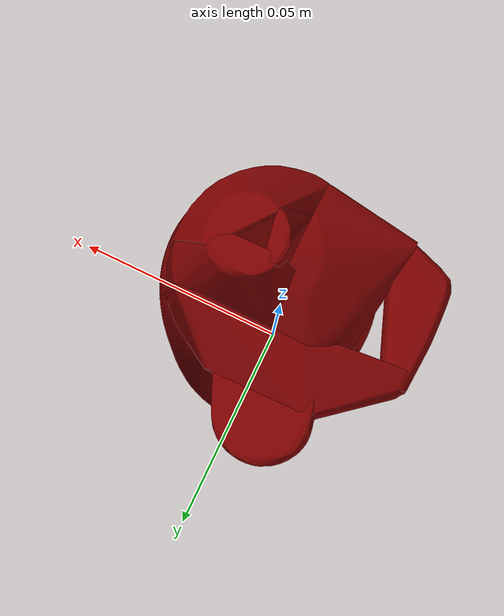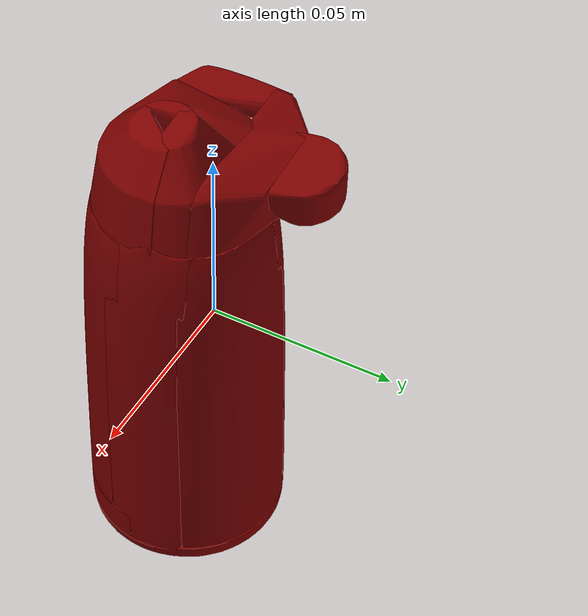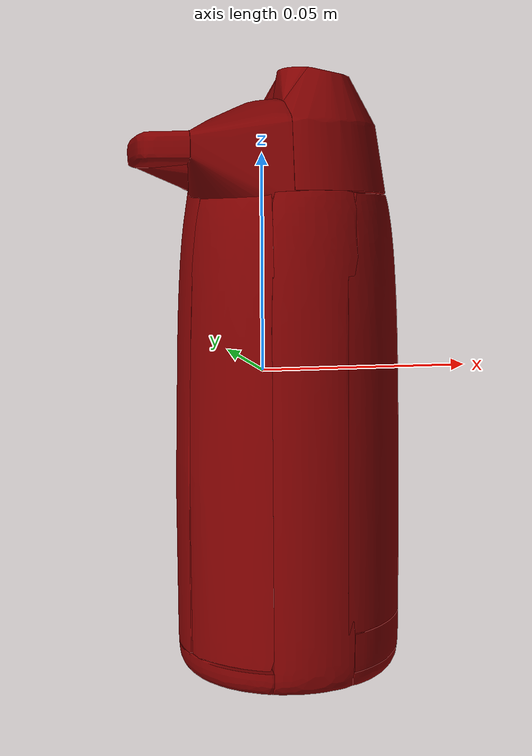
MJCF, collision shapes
<?xml version='1.0' encoding='utf-8'?>
<mujoco model="water_bottle_28">
  <asset>
    <mesh file="visual/model_normalized_0.obj" name="model_normalized_0_vis" scale="0.135 0.135 0.135" refquat="1.0 0.0 0.0 0.0" />
    <mesh file="visual/model_normalized_1.obj" name="model_normalized_1_vis" scale="0.135 0.135 0.135" refquat="1.0 0.0 0.0 0.0" />
    <mesh file="visual/model_normalized_2.obj" name="model_normalized_2_vis" scale="0.135 0.135 0.135" refquat="1.0 0.0 0.0 0.0" />
    <mesh file="visual/model_normalized_3.obj" name="model_normalized_3_vis" scale="0.135 0.135 0.135" refquat="1.0 0.0 0.0 0.0" />
    <material name="Glass.002" specular="0.5" shininess="0.8520968050000001" rgba="0.800000 0.800000 0.800000 1.0" />
    <material name="Masic_Matte" specular="0.5" shininess="0.21159998" rgba="0.048397 0.048397 0.048397 1.0" />
    <material name="Sticker_Blue" specular="0.5" shininess="0.25" rgba="0.445776 0.658465 0.798722 1.0" />
    <material name="Sticker_White" specular="0.5" shininess="0.25" rgba="0.800000 0.800000 0.800000 1.0" />
    <mesh file="collision/collision_mesh_collision_0.obj" name="water_collision_mesh_0" scale="0.135 0.135 0.135" refquat="1.0 0.0 0.0 0.0" />
    <mesh file="collision/collision_mesh_collision_1.obj" name="water_collision_mesh_1" scale="0.135 0.135 0.135" refquat="1.0 0.0 0.0 0.0" />
    <mesh file="collision/collision_mesh_collision_2.obj" name="water_collision_mesh_2" scale="0.135 0.135 0.135" refquat="1.0 0.0 0.0 0.0" />
    <mesh file="collision/collision_mesh_collision_3.obj" name="water_collision_mesh_3" scale="0.135 0.135 0.135" refquat="1.0 0.0 0.0 0.0" />
    <mesh file="collision/collision_mesh_collision_4.obj" name="water_collision_mesh_4" scale="0.135 0.135 0.135" refquat="1.0 0.0 0.0 0.0" />
    <mesh file="collision/collision_mesh_collision_5.obj" name="water_collision_mesh_5" scale="0.135 0.135 0.135" refquat="1.0 0.0 0.0 0.0" />
    <mesh file="collision/collision_mesh_collision_6.obj" name="water_collision_mesh_6" scale="0.135 0.135 0.135" refquat="1.0 0.0 0.0 0.0" />
    <mesh file="collision/collision_mesh_collision_7.obj" name="water_collision_mesh_7" scale="0.135 0.135 0.135" refquat="1.0 0.0 0.0 0.0" />
    <mesh file="collision/collision_mesh_collision_8.obj" name="water_collision_mesh_8" scale="0.135 0.135 0.135" refquat="1.0 0.0 0.0 0.0" />
    <mesh file="collision/collision_mesh_collision_9.obj" name="water_collision_mesh_9" scale="0.135 0.135 0.135" refquat="1.0 0.0 0.0 0.0" />
    <mesh file="collision/collision_mesh_collision_10.obj" name="water_collision_mesh_10" scale="0.135 0.135 0.135" refquat="1.0 0.0 0.0 0.0" />
    <mesh file="collision/collision_mesh_collision_11.obj" name="water_collision_mesh_11" scale="0.135 0.135 0.135" refquat="1.0 0.0 0.0 0.0" />
    <mesh file="collision/collision_mesh_collision_12.obj" name="water_collision_mesh_12" scale="0.135 0.135 0.135" refquat="1.0 0.0 0.0 0.0" />
    <mesh file="collision/collision_mesh_collision_13.obj" name="water_collision_mesh_13" scale="0.135 0.135 0.135" refquat="1.0 0.0 0.0 0.0" />
    <mesh file="collision/collision_mesh_collision_14.obj" name="water_collision_mesh_14" scale="0.135 0.135 0.135" refquat="1.0 0.0 0.0 0.0" />
    <mesh file="collision/collision_mesh_collision_15.obj" name="water_collision_mesh_15" scale="0.135 0.135 0.135" refquat="1.0 0.0 0.0 0.0" />
    </asset>
  <default>
    <default class="region">
      <geom group="1" conaffinity="0" contype="0" rgba="0 1 0 0" />
      </default>
    <default class="collision">
      <geom group="0" rgba="0.5 0 0 0.5" density="1000.0" />
      </default>
    </default>
  <worldbody>
    <body>
      <body name="object">
        <geom solimp="0.998 0.998 0.001" solref="0.001 1" density="100" friction="0.95 0.3 0.1" type="mesh" mesh="model_normalized_0_vis" conaffinity="0" contype="0" group="1" material="Sticker_Blue" />
        <geom solimp="0.998 0.998 0.001" solref="0.001 1" density="100" friction="0.95 0.3 0.1" type="mesh" mesh="model_normalized_1_vis" conaffinity="0" contype="0" group="1" material="Sticker_White" />
        <geom solimp="0.998 0.998 0.001" solref="0.001 1" density="100" friction="0.95 0.3 0.1" type="mesh" mesh="model_normalized_2_vis" conaffinity="0" contype="0" group="1" material="Masic_Matte" />
        <geom solimp="0.998 0.998 0.001" solref="0.001 1" density="100" friction="0.95 0.3 0.1" type="mesh" mesh="model_normalized_3_vis" conaffinity="0" contype="0" group="1" material="Glass.002" />
        <geom class="region" name="reg_bbox" type="box" pos="0.00012838837499999924 1.1948849999999998e-05 -9.113647500000321e-05" size="0.028846289700000003 0.030524709599999998 0.067408679925" />
        <geom mesh="water_collision_mesh_0" type="mesh" class="collision" />
        <geom mesh="water_collision_mesh_1" type="mesh" class="collision" />
        <geom mesh="water_collision_mesh_2" type="mesh" class="collision" />
        <geom mesh="water_collision_mesh_3" type="mesh" class="collision" />
        <geom mesh="water_collision_mesh_4" type="mesh" class="collision" />
        <geom mesh="water_collision_mesh_5" type="mesh" class="collision" />
        <geom mesh="water_collision_mesh_6" type="mesh" class="collision" />
        <geom mesh="water_collision_mesh_7" type="mesh" class="collision" />
        <geom mesh="water_collision_mesh_8" type="mesh" class="collision" />
        <geom mesh="water_collision_mesh_9" type="mesh" class="collision" />
        <geom mesh="water_collision_mesh_10" type="mesh" class="collision" />
        <geom mesh="water_collision_mesh_11" type="mesh" class="collision" />
        <geom mesh="water_collision_mesh_12" type="mesh" class="collision" />
        <geom mesh="water_collision_mesh_13" type="mesh" class="collision" />
        <geom mesh="water_collision_mesh_14" type="mesh" class="collision" />
        <geom mesh="water_collision_mesh_15" type="mesh" class="collision" />
        </body>
      </body>
    </worldbody>
  </mujoco>
